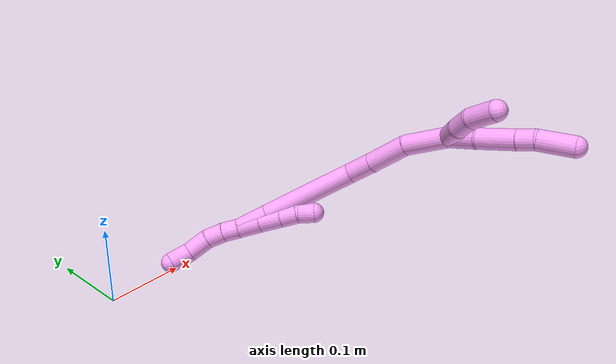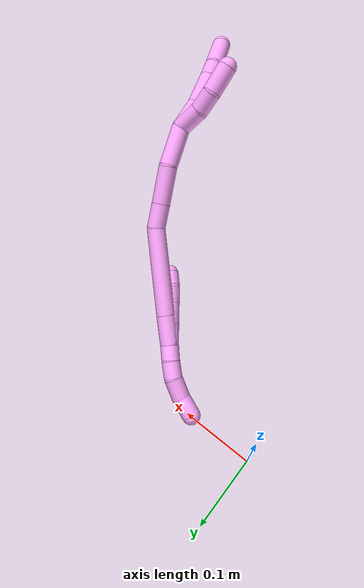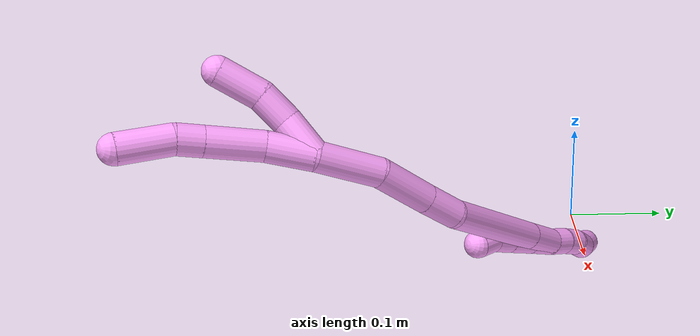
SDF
<sdf version="1.7">
 <world name="default">
  <model name="4">
   <static>0</static>
   <link name="4">
    <collision name="collision-cylinder-e_1_2_8">
     <pose>0.004613 0.009078 0.016511 -0.502732 0.240122 -0.061941</pose>
     <geometry><cylinder><radius>0.0125</radius><length>0.038797</length></cylinder></geometry>
     <surface>
      <friction><ode><mu>1.16</mu><mu2>1.16</mu2><slip1>0</slip1><slip2>0</slip2></ode></friction>
      <contact><ode><kp>1e+06</kp><kd>1</kd><max_vel>0</max_vel><min_depth>0.001</min_depth></ode></contact>
     </surface>
    </collision>
    <visual name="visual-cylinder-e_1_2_8">
     <pose>0.004613 0.009078 0.016511 -0.502732 0.240122 -0.061941</pose>
     <geometry><cylinder><radius>0.0125</radius><length>0.038797</length></cylinder></geometry>
     <material><ambient>1 0.65098 0.996078 1</ambient></material>
    </visual>
    <collision name="collision-cylinder-e_2_8_9">
     <pose>0.011619 0.026522 0.054704 -0.368207 0.102577 -0.019117</pose>
     <geometry><cylinder><radius>0.0125</radius><length>0.046726</length></cylinder></geometry>
     <surface>
      <friction><ode><mu>1.16</mu><mu2>1.16</mu2><slip1>0</slip1><slip2>0</slip2></ode></friction>
      <contact><ode><kp>1e+06</kp><kd>1</kd><max_vel>0</max_vel><min_depth>0.001</min_depth></ode></contact>
     </surface>
    </collision>
    <visual name="visual-cylinder-e_2_8_9">
     <pose>0.011619 0.026522 0.054704 -0.368207 0.102577 -0.019117</pose>
     <geometry><cylinder><radius>0.0125</radius><length>0.046726</length></cylinder></geometry>
     <material><ambient>1 0.65098 0.996078 1</ambient></material>
    </visual>
    <collision name="collision-cylinder-e_3_9_10">
     <pose>0.015015 0.038254 0.086328 -0.32654 0.095314 -0.015713</pose>
     <geometry><cylinder><radius>0.0125</radius><length>0.021088</length></cylinder></geometry>
     <surface>
      <friction><ode><mu>1.16</mu><mu2>1.16</mu2><slip1>0</slip1><slip2>0</slip2></ode></friction>
      <contact><ode><kp>1e+06</kp><kd>1</kd><max_vel>0</max_vel><min_depth>0.001</min_depth></ode></contact>
     </surface>
    </collision>
    <visual name="visual-cylinder-e_3_9_10">
     <pose>0.015015 0.038254 0.086328 -0.32654 0.095314 -0.015713</pose>
     <geometry><cylinder><radius>0.0125</radius><length>0.021088</length></cylinder></geometry>
     <material><ambient>1 0.65098 0.996078 1</ambient></material>
    </visual>
    <collision name="collision-cylinder-e_4_10_6">
     <pose>0.012813 0.049287 0.11631 -0.365359 -0.14831 0.027447</pose>
     <geometry><cylinder><radius>0.0125</radius><length>0.043389</length></cylinder></geometry>
     <surface>
      <friction><ode><mu>1.16</mu><mu2>1.16</mu2><slip1>0</slip1><slip2>0</slip2></ode></friction>
      <contact><ode><kp>1e+06</kp><kd>1</kd><max_vel>0</max_vel><min_depth>0.001</min_depth></ode></contact>
     </surface>
    </collision>
    <visual name="visual-cylinder-e_4_10_6">
     <pose>0.012813 0.049287 0.11631 -0.365359 -0.14831 0.027447</pose>
     <geometry><cylinder><radius>0.0125</radius><length>0.043389</length></cylinder></geometry>
     <material><ambient>1 0.65098 0.996078 1</ambient></material>
    </visual>
    <collision name="collision-cylinder-e_1_2_11">
     <pose>0.014349 0.00674 0.007345 -0.742536 0.963614 -0.401672</pose>
     <geometry><cylinder><radius>0.0125</radius><length>0.034944</length></cylinder></geometry>
     <surface>
      <friction><ode><mu>1.16</mu><mu2>1.16</mu2><slip1>0</slip1><slip2>0</slip2></ode></friction>
      <contact><ode><kp>1e+06</kp><kd>1</kd><max_vel>0</max_vel><min_depth>0.001</min_depth></ode></contact>
     </surface>
    </collision>
    <visual name="visual-cylinder-e_1_2_11">
     <pose>0.014349 0.00674 0.007345 -0.742536 0.963614 -0.401672</pose>
     <geometry><cylinder><radius>0.0125</radius><length>0.034944</length></cylinder></geometry>
     <material><ambient>1 0.65098 0.996078 1</ambient></material>
    </visual>
    <collision name="collision-cylinder-e_2_11_12">
     <pose>0.038935 0.017116 0.023194 -0.403903 0.836095 -0.181408</pose>
     <geometry><cylinder><radius>0.0125</radius><length>0.027593</length></cylinder></geometry>
     <surface>
      <friction><ode><mu>1.16</mu><mu2>1.16</mu2><slip1>0</slip1><slip2>0</slip2></ode></friction>
      <contact><ode><kp>1e+06</kp><kd>1</kd><max_vel>0</max_vel><min_depth>0.001</min_depth></ode></contact>
     </surface>
    </collision>
    <visual name="visual-cylinder-e_2_11_12">
     <pose>0.038935 0.017116 0.023194 -0.403903 0.836095 -0.181408</pose>
     <geometry><cylinder><radius>0.0125</radius><length>0.027593</length></cylinder></geometry>
     <material><ambient>1 0.65098 0.996078 1</ambient></material>
    </visual>
    <collision name="collision-cylinder-e_3_12_5">
     <pose>0.058775 0.027134 0.04646 -0.408133 0.538225 -0.11403</pose>
     <geometry><cylinder><radius>0.0125</radius><length>0.037463</length></cylinder></geometry>
     <surface>
      <friction><ode><mu>1.16</mu><mu2>1.16</mu2><slip1>0</slip1><slip2>0</slip2></ode></friction>
      <contact><ode><kp>1e+06</kp><kd>1</kd><max_vel>0</max_vel><min_depth>0.001</min_depth></ode></contact>
     </surface>
    </collision>
    <visual name="visual-cylinder-e_3_12_5">
     <pose>0.058775 0.027134 0.04646 -0.408133 0.538225 -0.11403</pose>
     <geometry><cylinder><radius>0.0125</radius><length>0.037463</length></cylinder></geometry>
     <material><ambient>1 0.65098 0.996078 1</ambient></material>
    </visual>
    <collision name="collision-cylinder-e_1_2_13">
     <pose>-0.006787 -0.006041 -0.026527 2.91769 -0.244468 -1.65937</pose>
     <geometry><cylinder><radius>0.0125</radius><length>0.056079</length></cylinder></geometry>
     <surface>
      <friction><ode><mu>1.16</mu><mu2>1.16</mu2><slip1>0</slip1><slip2>0</slip2></ode></friction>
      <contact><ode><kp>1e+06</kp><kd>1</kd><max_vel>0</max_vel><min_depth>0.001</min_depth></ode></contact>
     </surface>
    </collision>
    <visual name="visual-cylinder-e_1_2_13">
     <pose>-0.006787 -0.006041 -0.026527 2.91769 -0.244468 -1.65937</pose>
     <geometry><cylinder><radius>0.0125</radius><length>0.056079</length></cylinder></geometry>
     <material><ambient>1 0.65098 0.996078 1</ambient></material>
    </visual>
    <collision name="collision-cylinder-e_2_13_14">
     <pose>-0.023979 -0.012412 -0.076125 3.12726 -0.423649 -3.07497</pose>
     <geometry><cylinder><radius>0.0125</radius><length>0.050623</length></cylinder></geometry>
     <surface>
      <friction><ode><mu>1.16</mu><mu2>1.16</mu2><slip1>0</slip1><slip2>0</slip2></ode></friction>
      <contact><ode><kp>1e+06</kp><kd>1</kd><max_vel>0</max_vel><min_depth>0.001</min_depth></ode></contact>
     </surface>
    </collision>
    <visual name="visual-cylinder-e_2_13_14">
     <pose>-0.023979 -0.012412 -0.076125 3.12726 -0.423649 -3.07497</pose>
     <geometry><cylinder><radius>0.0125</radius><length>0.050623</length></cylinder></geometry>
     <material><ambient>1 0.65098 0.996078 1</ambient></material>
    </visual>
    <collision name="collision-cylinder-e_3_14_15">
     <pose>-0.04101 -0.013241 -0.114574 3.10917 -0.406644 -2.98462</pose>
     <geometry><cylinder><radius>0.0125</radius><length>0.033505</length></cylinder></geometry>
     <surface>
      <friction><ode><mu>1.16</mu><mu2>1.16</mu2><slip1>0</slip1><slip2>0</slip2></ode></friction>
      <contact><ode><kp>1e+06</kp><kd>1</kd><max_vel>0</max_vel><min_depth>0.001</min_depth></ode></contact>
     </surface>
    </collision>
    <visual name="visual-cylinder-e_3_14_15">
     <pose>-0.04101 -0.013241 -0.114574 3.10917 -0.406644 -2.98462</pose>
     <geometry><cylinder><radius>0.0125</radius><length>0.033505</length></cylinder></geometry>
     <material><ambient>1 0.65098 0.996078 1</ambient></material>
    </visual>
    <collision name="collision-cylinder-e_4_15_16">
     <pose>-0.057019 -0.001536 -0.187203 -2.93156 -0.158943 1.29409</pose>
     <geometry><cylinder><radius>0.0125</radius><length>0.118568</length></cylinder></geometry>
     <surface>
      <friction><ode><mu>1.16</mu><mu2>1.16</mu2><slip1>0</slip1><slip2>0</slip2></ode></friction>
      <contact><ode><kp>1e+06</kp><kd>1</kd><max_vel>0</max_vel><min_depth>0.001</min_depth></ode></contact>
     </surface>
    </collision>
    <visual name="visual-cylinder-e_4_15_16">
     <pose>-0.057019 -0.001536 -0.187203 -2.93156 -0.158943 1.29409</pose>
     <geometry><cylinder><radius>0.0125</radius><length>0.118568</length></cylinder></geometry>
     <material><ambient>1 0.65098 0.996078 1</ambient></material>
    </visual>
    <collision name="collision-cylinder-e_5_16_1">
     <pose>-0.06942 0.015232 -0.264326 -2.9159 -0.146947 1.15205</pose>
     <geometry><cylinder><radius>0.0125</radius><length>0.041226</length></cylinder></geometry>
     <surface>
      <friction><ode><mu>1.16</mu><mu2>1.16</mu2><slip1>0</slip1><slip2>0</slip2></ode></friction>
      <contact><ode><kp>1e+06</kp><kd>1</kd><max_vel>0</max_vel><min_depth>0.001</min_depth></ode></contact>
     </surface>
    </collision>
    <visual name="visual-cylinder-e_5_16_1">
     <pose>-0.06942 0.015232 -0.264326 -2.9159 -0.146947 1.15205</pose>
     <geometry><cylinder><radius>0.0125</radius><length>0.041226</length></cylinder></geometry>
     <material><ambient>1 0.65098 0.996078 1</ambient></material>
    </visual>
    <collision name="collision-cylinder-e_1_1_17">
     <pose>-0.072281 0.020769 -0.294713 -3.04923 0.01493 -0.320293</pose>
     <geometry><cylinder><radius>0.0125</radius><length>0.021118</length></cylinder></geometry>
     <surface>
      <friction><ode><mu>1.16</mu><mu2>1.16</mu2><slip1>0</slip1><slip2>0</slip2></ode></friction>
      <contact><ode><kp>1e+06</kp><kd>1</kd><max_vel>0</max_vel><min_depth>0.001</min_depth></ode></contact>
     </surface>
    </collision>
    <visual name="visual-cylinder-e_1_1_17">
     <pose>-0.072281 0.020769 -0.294713 -3.04923 0.01493 -0.320293</pose>
     <geometry><cylinder><radius>0.0125</radius><length>0.021118</length></cylinder></geometry>
     <material><ambient>1 0.65098 0.996078 1</ambient></material>
    </visual>
    <collision name="collision-cylinder-e_2_17_18">
     <pose>-0.072718 0.02404 -0.316459 -2.93987 -0.051803 0.5012</pose>
     <geometry><cylinder><radius>0.0125</radius><length>0.022963</length></cylinder></geometry>
     <surface>
      <friction><ode><mu>1.16</mu><mu2>1.16</mu2><slip1>0</slip1><slip2>0</slip2></ode></friction>
      <contact><ode><kp>1e+06</kp><kd>1</kd><max_vel>0</max_vel><min_depth>0.001</min_depth></ode></contact>
     </surface>
    </collision>
    <visual name="visual-cylinder-e_2_17_18">
     <pose>-0.072718 0.02404 -0.316459 -2.93987 -0.051803 0.5012</pose>
     <geometry><cylinder><radius>0.0125</radius><length>0.022963</length></cylinder></geometry>
     <material><ambient>1 0.65098 0.996078 1</ambient></material>
    </visual>
    <collision name="collision-cylinder-e_3_18_19">
     <pose>-0.074953 0.033032 -0.34042 -2.65734 -0.113584 0.452518</pose>
     <geometry><cylinder><radius>0.0125</radius><length>0.028948</length></cylinder></geometry>
     <surface>
      <friction><ode><mu>1.16</mu><mu2>1.16</mu2><slip1>0</slip1><slip2>0</slip2></ode></friction>
      <contact><ode><kp>1e+06</kp><kd>1</kd><max_vel>0</max_vel><min_depth>0.001</min_depth></ode></contact>
     </surface>
    </collision>
    <visual name="visual-cylinder-e_3_18_19">
     <pose>-0.074953 0.033032 -0.34042 -2.65734 -0.113584 0.452518</pose>
     <geometry><cylinder><radius>0.0125</radius><length>0.028948</length></cylinder></geometry>
     <material><ambient>1 0.65098 0.996078 1</ambient></material>
    </visual>
    <collision name="collision-cylinder-e_4_19_4">
     <pose>-0.074526 0.046458 -0.364649 -2.61213 0.153914 -0.554242</pose>
     <geometry><cylinder><radius>0.0125</radius><length>0.026971</length></cylinder></geometry>
     <surface>
      <friction><ode><mu>1.16</mu><mu2>1.16</mu2><slip1>0</slip1><slip2>0</slip2></ode></friction>
      <contact><ode><kp>1e+06</kp><kd>1</kd><max_vel>0</max_vel><min_depth>0.001</min_depth></ode></contact>
     </surface>
    </collision>
    <visual name="visual-cylinder-e_4_19_4">
     <pose>-0.074526 0.046458 -0.364649 -2.61213 0.153914 -0.554242</pose>
     <geometry><cylinder><radius>0.0125</radius><length>0.026971</length></cylinder></geometry>
     <material><ambient>1 0.65098 0.996078 1</ambient></material>
    </visual>
    <collision name="collision-cylinder-e_1_1_20">
     <pose>-0.071407 0.019241 -0.269554 0.037808 0.070227 0.001328</pose>
     <geometry><cylinder><radius>0.0125</radius><length>0.029386</length></cylinder></geometry>
     <surface>
      <friction><ode><mu>1.16</mu><mu2>1.16</mu2><slip1>0</slip1><slip2>0</slip2></ode></friction>
      <contact><ode><kp>1e+06</kp><kd>1</kd><max_vel>0</max_vel><min_depth>0.001</min_depth></ode></contact>
     </surface>
    </collision>
    <visual name="visual-cylinder-e_1_1_20">
     <pose>-0.071407 0.019241 -0.269554 0.037808 0.070227 0.001328</pose>
     <geometry><cylinder><radius>0.0125</radius><length>0.029386</length></cylinder></geometry>
     <material><ambient>1 0.65098 0.996078 1</ambient></material>
    </visual>
    <collision name="collision-cylinder-e_2_20_21">
     <pose>-0.069498 0.018481 -0.240628 0.014436 0.061406 0.000443</pose>
     <geometry><cylinder><radius>0.0125</radius><length>0.028614</length></cylinder></geometry>
     <surface>
      <friction><ode><mu>1.16</mu><mu2>1.16</mu2><slip1>0</slip1><slip2>0</slip2></ode></friction>
      <contact><ode><kp>1e+06</kp><kd>1</kd><max_vel>0</max_vel><min_depth>0.001</min_depth></ode></contact>
     </surface>
    </collision>
    <visual name="visual-cylinder-e_2_20_21">
     <pose>-0.069498 0.018481 -0.240628 0.014436 0.061406 0.000443</pose>
     <geometry><cylinder><radius>0.0125</radius><length>0.028614</length></cylinder></geometry>
     <material><ambient>1 0.65098 0.996078 1</ambient></material>
    </visual>
    <collision name="collision-cylinder-e_3_21_22">
     <pose>-0.067928 0.018035 -0.215487 0.022087 0.063637 0.000703</pose>
     <geometry><cylinder><radius>0.0125</radius><length>0.021775</length></cylinder></geometry>
     <surface>
      <friction><ode><mu>1.16</mu><mu2>1.16</mu2><slip1>0</slip1><slip2>0</slip2></ode></friction>
      <contact><ode><kp>1e+06</kp><kd>1</kd><max_vel>0</max_vel><min_depth>0.001</min_depth></ode></contact>
     </surface>
    </collision>
    <visual name="visual-cylinder-e_3_21_22">
     <pose>-0.067928 0.018035 -0.215487 0.022087 0.063637 0.000703</pose>
     <geometry><cylinder><radius>0.0125</radius><length>0.021775</length></cylinder></geometry>
     <material><ambient>1 0.65098 0.996078 1</ambient></material>
    </visual>
    <collision name="collision-cylinder-e_4_22_3">
     <pose>-0.069701 0.017742 -0.194817 0.005381 -0.246249 -0.000666</pose>
     <geometry><cylinder><radius>0.0125</radius><length>0.020225</length></cylinder></geometry>
     <surface>
      <friction><ode><mu>1.16</mu><mu2>1.16</mu2><slip1>0</slip1><slip2>0</slip2></ode></friction>
      <contact><ode><kp>1e+06</kp><kd>1</kd><max_vel>0</max_vel><min_depth>0.001</min_depth></ode></contact>
     </surface>
    </collision>
    <visual name="visual-cylinder-e_4_22_3">
     <pose>-0.069701 0.017742 -0.194817 0.005381 -0.246249 -0.000666</pose>
     <geometry><cylinder><radius>0.0125</radius><length>0.020225</length></cylinder></geometry>
     <material><ambient>1 0.65098 0.996078 1</ambient></material>
    </visual>
    <collision name="collision-sphere-3">
     <pose>-0.072166 0.017689 -0.18501 0 -0 0</pose>
     <geometry><sphere><radius>0.0125</radius></sphere></geometry>
     <surface>
      <friction><ode><mu>1.16</mu><mu2>1.16</mu2><slip1>0</slip1><slip2>0</slip2></ode></friction>
      <contact><ode><kp>1e+06</kp><kd>1</kd><max_vel>0</max_vel><min_depth>0.001</min_depth></ode></contact>
     </surface>
    </collision>
    <visual name="visual-sphere-3">
     <pose>-0.072166 0.017689 -0.18501 0 -0 0</pose>
     <geometry><sphere><radius>0.0125</radius></sphere></geometry>
     <material><ambient>1 0.65098 0.996078 1</ambient></material>
    </visual>
    <collision name="collision-sphere-22">
     <pose>-0.067236 0.017795 -0.204624 0 -0 0</pose>
     <geometry><sphere><radius>0.0125</radius></sphere></geometry>
     <surface>
      <friction><ode><mu>1.16</mu><mu2>1.16</mu2><slip1>0</slip1><slip2>0</slip2></ode></friction>
      <contact><ode><kp>1e+06</kp><kd>1</kd><max_vel>0</max_vel><min_depth>0.001</min_depth></ode></contact>
     </surface>
    </collision>
    <visual name="visual-sphere-22">
     <pose>-0.067236 0.017795 -0.204624 0 -0 0</pose>
     <geometry><sphere><radius>0.0125</radius></sphere></geometry>
     <material><ambient>1 0.65098 0.996078 1</ambient></material>
    </visual>
    <collision name="collision-sphere-21">
     <pose>-0.06862 0.018274 -0.22635 0 -0 0</pose>
     <geometry><sphere><radius>0.0125</radius></sphere></geometry>
     <surface>
      <friction><ode><mu>1.16</mu><mu2>1.16</mu2><slip1>0</slip1><slip2>0</slip2></ode></friction>
      <contact><ode><kp>1e+06</kp><kd>1</kd><max_vel>0</max_vel><min_depth>0.001</min_depth></ode></contact>
     </surface>
    </collision>
    <visual name="visual-sphere-21">
     <pose>-0.06862 0.018274 -0.22635 0 -0 0</pose>
     <geometry><sphere><radius>0.0125</radius></sphere></geometry>
     <material><ambient>1 0.65098 0.996078 1</ambient></material>
    </visual>
    <collision name="collision-sphere-20">
     <pose>-0.070376 0.018687 -0.254907 0 -0 0</pose>
     <geometry><sphere><radius>0.0125</radius></sphere></geometry>
     <surface>
      <friction><ode><mu>1.16</mu><mu2>1.16</mu2><slip1>0</slip1><slip2>0</slip2></ode></friction>
      <contact><ode><kp>1e+06</kp><kd>1</kd><max_vel>0</max_vel><min_depth>0.001</min_depth></ode></contact>
     </surface>
    </collision>
    <visual name="visual-sphere-20">
     <pose>-0.070376 0.018687 -0.254907 0 -0 0</pose>
     <geometry><sphere><radius>0.0125</radius></sphere></geometry>
     <material><ambient>1 0.65098 0.996078 1</ambient></material>
    </visual>
    <collision name="collision-sphere-4">
     <pose>-0.072458 0.053188 -0.37615 0 -0 0</pose>
     <geometry><sphere><radius>0.0125</radius></sphere></geometry>
     <surface>
      <friction><ode><mu>1.16</mu><mu2>1.16</mu2><slip1>0</slip1><slip2>0</slip2></ode></friction>
      <contact><ode><kp>1e+06</kp><kd>1</kd><max_vel>0</max_vel><min_depth>0.001</min_depth></ode></contact>
     </surface>
    </collision>
    <visual name="visual-sphere-4">
     <pose>-0.072458 0.053188 -0.37615 0 -0 0</pose>
     <geometry><sphere><radius>0.0125</radius></sphere></geometry>
     <material><ambient>1 0.65098 0.996078 1</ambient></material>
    </visual>
    <collision name="collision-sphere-11">
     <pose>0.028698 0.013481 0.014689 0 -0 0</pose>
     <geometry><sphere><radius>0.0125</radius></sphere></geometry>
     <surface>
      <friction><ode><mu>1.16</mu><mu2>1.16</mu2><slip1>0</slip1><slip2>0</slip2></ode></friction>
      <contact><ode><kp>1e+06</kp><kd>1</kd><max_vel>0</max_vel><min_depth>0.001</min_depth></ode></contact>
     </surface>
    </collision>
    <visual name="visual-sphere-11">
     <pose>0.028698 0.013481 0.014689 0 -0 0</pose>
     <geometry><sphere><radius>0.0125</radius></sphere></geometry>
     <material><ambient>1 0.65098 0.996078 1</ambient></material>
    </visual>
    <collision name="collision-sphere-6">
     <pose>0.009607 0.056953 0.13635 0 -0 0</pose>
     <geometry><sphere><radius>0.0125</radius></sphere></geometry>
     <surface>
      <friction><ode><mu>1.16</mu><mu2>1.16</mu2><slip1>0</slip1><slip2>0</slip2></ode></friction>
      <contact><ode><kp>1e+06</kp><kd>1</kd><max_vel>0</max_vel><min_depth>0.001</min_depth></ode></contact>
     </surface>
    </collision>
    <visual name="visual-sphere-6">
     <pose>0.009607 0.056953 0.13635 0 -0 0</pose>
     <geometry><sphere><radius>0.0125</radius></sphere></geometry>
     <material><ambient>1 0.65098 0.996078 1</ambient></material>
    </visual>
    <collision name="collision-sphere-10">
     <pose>0.016018 0.041621 0.09627 0 -0 0</pose>
     <geometry><sphere><radius>0.0125</radius></sphere></geometry>
     <surface>
      <friction><ode><mu>1.16</mu><mu2>1.16</mu2><slip1>0</slip1><slip2>0</slip2></ode></friction>
      <contact><ode><kp>1e+06</kp><kd>1</kd><max_vel>0</max_vel><min_depth>0.001</min_depth></ode></contact>
     </surface>
    </collision>
    <visual name="visual-sphere-10">
     <pose>0.016018 0.041621 0.09627 0 -0 0</pose>
     <geometry><sphere><radius>0.0125</radius></sphere></geometry>
     <material><ambient>1 0.65098 0.996078 1</ambient></material>
    </visual>
    <collision name="collision-sphere-9">
     <pose>0.014011 0.034887 0.076386 0 -0 0</pose>
     <geometry><sphere><radius>0.0125</radius></sphere></geometry>
     <surface>
      <friction><ode><mu>1.16</mu><mu2>1.16</mu2><slip1>0</slip1><slip2>0</slip2></ode></friction>
      <contact><ode><kp>1e+06</kp><kd>1</kd><max_vel>0</max_vel><min_depth>0.001</min_depth></ode></contact>
     </surface>
    </collision>
    <visual name="visual-sphere-9">
     <pose>0.014011 0.034887 0.076386 0 -0 0</pose>
     <geometry><sphere><radius>0.0125</radius></sphere></geometry>
     <material><ambient>1 0.65098 0.996078 1</ambient></material>
    </visual>
    <collision name="collision-sphere-2">
     <geometry><sphere><radius>0.0125</radius></sphere></geometry>
     <surface>
      <friction><ode><mu>1.16</mu><mu2>1.16</mu2><slip1>0</slip1><slip2>0</slip2></ode></friction>
      <contact><ode><kp>1e+06</kp><kd>1</kd><max_vel>0</max_vel><min_depth>0.001</min_depth></ode></contact>
     </surface>
    </collision>
    <visual name="visual-sphere-2">
     <geometry><sphere><radius>0.0125</radius></sphere></geometry>
     <material><ambient>1 0.65098 0.996078 1</ambient></material>
    </visual>
    <collision name="collision-sphere-19">
     <pose>-0.076593 0.039727 -0.353147 0 -0 0</pose>
     <geometry><sphere><radius>0.0125</radius></sphere></geometry>
     <surface>
      <friction><ode><mu>1.16</mu><mu2>1.16</mu2><slip1>0</slip1><slip2>0</slip2></ode></friction>
      <contact><ode><kp>1e+06</kp><kd>1</kd><max_vel>0</max_vel><min_depth>0.001</min_depth></ode></contact>
     </surface>
    </collision>
    <visual name="visual-sphere-19">
     <pose>-0.076593 0.039727 -0.353147 0 -0 0</pose>
     <geometry><sphere><radius>0.0125</radius></sphere></geometry>
     <material><ambient>1 0.65098 0.996078 1</ambient></material>
    </visual>
    <collision name="collision-sphere-8">
     <pose>0.009227 0.018157 0.033021 0 -0 0</pose>
     <geometry><sphere><radius>0.0125</radius></sphere></geometry>
     <surface>
      <friction><ode><mu>1.16</mu><mu2>1.16</mu2><slip1>0</slip1><slip2>0</slip2></ode></friction>
      <contact><ode><kp>1e+06</kp><kd>1</kd><max_vel>0</max_vel><min_depth>0.001</min_depth></ode></contact>
     </surface>
    </collision>
    <visual name="visual-sphere-8">
     <pose>0.009227 0.018157 0.033021 0 -0 0</pose>
     <geometry><sphere><radius>0.0125</radius></sphere></geometry>
     <material><ambient>1 0.65098 0.996078 1</ambient></material>
    </visual>
    <collision name="collision-sphere-12">
     <pose>0.049173 0.020751 0.031698 0 -0 0</pose>
     <geometry><sphere><radius>0.0125</radius></sphere></geometry>
     <surface>
      <friction><ode><mu>1.16</mu><mu2>1.16</mu2><slip1>0</slip1><slip2>0</slip2></ode></friction>
      <contact><ode><kp>1e+06</kp><kd>1</kd><max_vel>0</max_vel><min_depth>0.001</min_depth></ode></contact>
     </surface>
    </collision>
    <visual name="visual-sphere-12">
     <pose>0.049173 0.020751 0.031698 0 -0 0</pose>
     <geometry><sphere><radius>0.0125</radius></sphere></geometry>
     <material><ambient>1 0.65098 0.996078 1</ambient></material>
    </visual>
    <collision name="collision-sphere-5">
     <pose>0.068377 0.033517 0.061223 0 -0 0</pose>
     <geometry><sphere><radius>0.0125</radius></sphere></geometry>
     <surface>
      <friction><ode><mu>1.16</mu><mu2>1.16</mu2><slip1>0</slip1><slip2>0</slip2></ode></friction>
      <contact><ode><kp>1e+06</kp><kd>1</kd><max_vel>0</max_vel><min_depth>0.001</min_depth></ode></contact>
     </surface>
    </collision>
    <visual name="visual-sphere-5">
     <pose>0.068377 0.033517 0.061223 0 -0 0</pose>
     <geometry><sphere><radius>0.0125</radius></sphere></geometry>
     <material><ambient>1 0.65098 0.996078 1</ambient></material>
    </visual>
    <collision name="collision-sphere-13">
     <pose>-0.013573 -0.012081 -0.053053 0 -0 0</pose>
     <geometry><sphere><radius>0.0125</radius></sphere></geometry>
     <surface>
      <friction><ode><mu>1.16</mu><mu2>1.16</mu2><slip1>0</slip1><slip2>0</slip2></ode></friction>
      <contact><ode><kp>1e+06</kp><kd>1</kd><max_vel>0</max_vel><min_depth>0.001</min_depth></ode></contact>
     </surface>
    </collision>
    <visual name="visual-sphere-13">
     <pose>-0.013573 -0.012081 -0.053053 0 -0 0</pose>
     <geometry><sphere><radius>0.0125</radius></sphere></geometry>
     <material><ambient>1 0.65098 0.996078 1</ambient></material>
    </visual>
    <collision name="collision-sphere-14">
     <pose>-0.034384 -0.012743 -0.099196 0 -0 0</pose>
     <geometry><sphere><radius>0.0125</radius></sphere></geometry>
     <surface>
      <friction><ode><mu>1.16</mu><mu2>1.16</mu2><slip1>0</slip1><slip2>0</slip2></ode></friction>
      <contact><ode><kp>1e+06</kp><kd>1</kd><max_vel>0</max_vel><min_depth>0.001</min_depth></ode></contact>
     </surface>
    </collision>
    <visual name="visual-sphere-14">
     <pose>-0.034384 -0.012743 -0.099196 0 -0 0</pose>
     <geometry><sphere><radius>0.0125</radius></sphere></geometry>
     <material><ambient>1 0.65098 0.996078 1</ambient></material>
    </visual>
    <collision name="collision-sphere-15">
     <pose>-0.047636 -0.01374 -0.129952 0 -0 0</pose>
     <geometry><sphere><radius>0.0125</radius></sphere></geometry>
     <surface>
      <friction><ode><mu>1.16</mu><mu2>1.16</mu2><slip1>0</slip1><slip2>0</slip2></ode></friction>
      <contact><ode><kp>1e+06</kp><kd>1</kd><max_vel>0</max_vel><min_depth>0.001</min_depth></ode></contact>
     </surface>
    </collision>
    <visual name="visual-sphere-15">
     <pose>-0.047636 -0.01374 -0.129952 0 -0 0</pose>
     <geometry><sphere><radius>0.0125</radius></sphere></geometry>
     <material><ambient>1 0.65098 0.996078 1</ambient></material>
    </visual>
    <collision name="collision-sphere-16">
     <pose>-0.066402 0.010669 -0.244453 0 -0 0</pose>
     <geometry><sphere><radius>0.0125</radius></sphere></geometry>
     <surface>
      <friction><ode><mu>1.16</mu><mu2>1.16</mu2><slip1>0</slip1><slip2>0</slip2></ode></friction>
      <contact><ode><kp>1e+06</kp><kd>1</kd><max_vel>0</max_vel><min_depth>0.001</min_depth></ode></contact>
     </surface>
    </collision>
    <visual name="visual-sphere-16">
     <pose>-0.066402 0.010669 -0.244453 0 -0 0</pose>
     <geometry><sphere><radius>0.0125</radius></sphere></geometry>
     <material><ambient>1 0.65098 0.996078 1</ambient></material>
    </visual>
    <collision name="collision-sphere-1">
     <pose>-0.072438 0.019795 -0.2842 0 -0 0</pose>
     <geometry><sphere><radius>0.0125</radius></sphere></geometry>
     <surface>
      <friction><ode><mu>1.16</mu><mu2>1.16</mu2><slip1>0</slip1><slip2>0</slip2></ode></friction>
      <contact><ode><kp>1e+06</kp><kd>1</kd><max_vel>0</max_vel><min_depth>0.001</min_depth></ode></contact>
     </surface>
    </collision>
    <visual name="visual-sphere-1">
     <pose>-0.072438 0.019795 -0.2842 0 -0 0</pose>
     <geometry><sphere><radius>0.0125</radius></sphere></geometry>
     <material><ambient>1 0.65098 0.996078 1</ambient></material>
    </visual>
    <collision name="collision-sphere-18">
     <pose>-0.073312 0.026337 -0.327693 0 -0 0</pose>
     <geometry><sphere><radius>0.0125</radius></sphere></geometry>
     <surface>
      <friction><ode><mu>1.16</mu><mu2>1.16</mu2><slip1>0</slip1><slip2>0</slip2></ode></friction>
      <contact><ode><kp>1e+06</kp><kd>1</kd><max_vel>0</max_vel><min_depth>0.001</min_depth></ode></contact>
     </surface>
    </collision>
    <visual name="visual-sphere-18">
     <pose>-0.073312 0.026337 -0.327693 0 -0 0</pose>
     <geometry><sphere><radius>0.0125</radius></sphere></geometry>
     <material><ambient>1 0.65098 0.996078 1</ambient></material>
    </visual>
    <collision name="collision-sphere-17">
     <pose>-0.072123 0.021742 -0.305226 0 -0 0</pose>
     <geometry><sphere><radius>0.0125</radius></sphere></geometry>
     <surface>
      <friction><ode><mu>1.16</mu><mu2>1.16</mu2><slip1>0</slip1><slip2>0</slip2></ode></friction>
      <contact><ode><kp>1e+06</kp><kd>1</kd><max_vel>0</max_vel><min_depth>0.001</min_depth></ode></contact>
     </surface>
    </collision>
    <visual name="visual-sphere-17">
     <pose>-0.072123 0.021742 -0.305226 0 -0 0</pose>
     <geometry><sphere><radius>0.0125</radius></sphere></geometry>
     <material><ambient>1 0.65098 0.996078 1</ambient></material>
    </visual>
    <inertial>
     <pose>-0.028761 0.013789 -0.114922 0 -0 0</pose>
     <mass>0.75</mass>
     <inertia>
      <ixx>0.000202</ixx>
      <ixy>0</ixy>
      <ixz>0</ixz>
      <iyy>0.000157</iyy>
      <iyz>0</iyz>
      <izz>-2.7e-05</izz>
     </inertia>
    </inertial>
   </link>
   <pose>0.314616 -0.252818 0.199701 -0.965448 -1.06542 -3.02136</pose>
  </model>
 </world>
</sdf>
